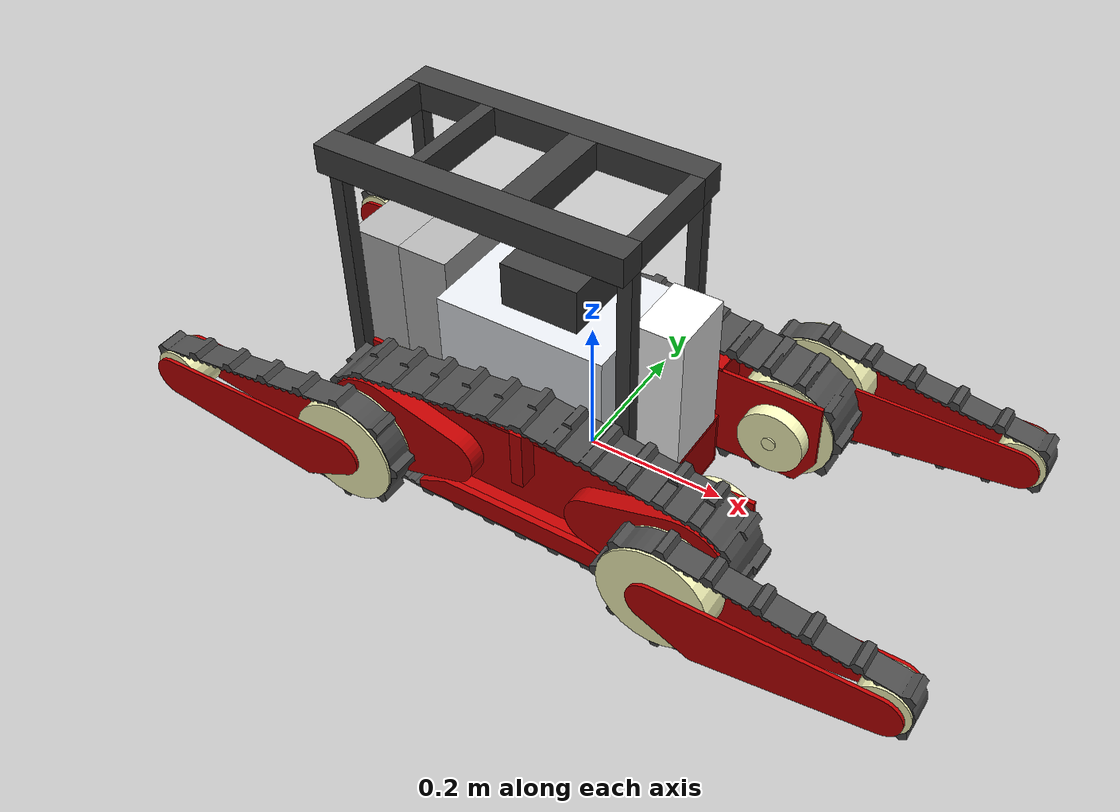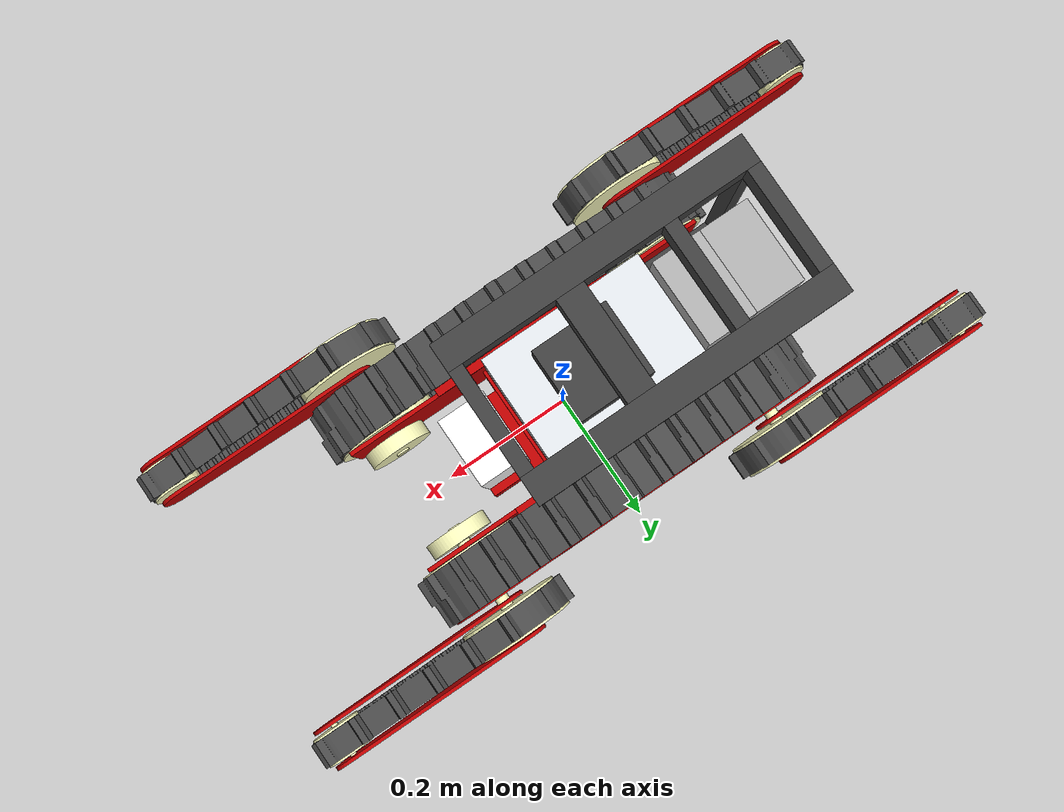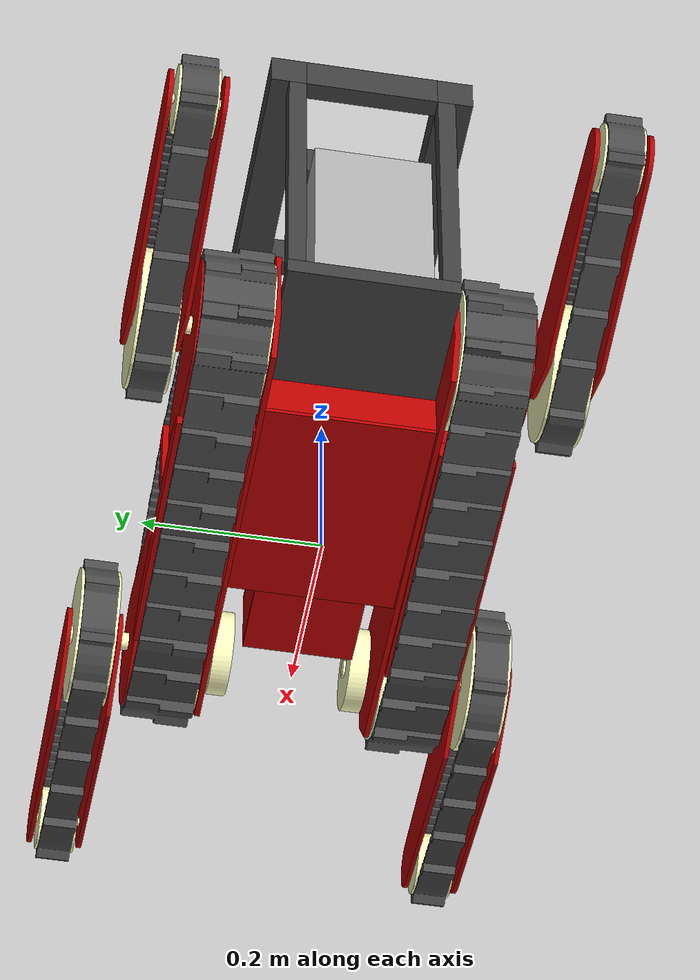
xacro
<?xml version="1.0"?>
<robot xmlns:xacro="http://ros.org/wiki/xacro" name="aizu_spider_basic">

  <xacro:include filename="$(find aizu_spider_tnk_description)/urdf/common.xacro"/>

  <link name="base_link"/>

  <!-- Chassis -->
  <xacro:include filename="$(find aizu_spider_tnk_description)/urdf/CHASSIS/CHASSIS.urdf.xacro"/>
  <!-- Flippers -->
  <xacro:include filename="$(find aizu_spider_tnk_description)/urdf/FLIPPER/FLIPPER.urdf.xacro"/>

</robot>

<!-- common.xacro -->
<robot xmlns:xacro="http://ros.org/wiki/xacro">

  <material name="off_white">
    <color rgba="1 1 0.752941 1"/>
  </material>

  <xacro:property name="M_PI" value="3.1415926535897931"/>

</robot>

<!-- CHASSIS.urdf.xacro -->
<robot xmlns:xacro="http://ros.org/wiki/xacro" name="aizu_spider_basic">
  <xacro:macro name="chassis_v0">
    <joint name="base_link_to_chassis" type="fixed">
      <parent link="base_link"/>
      <child link="chassis"/>
    </joint>
    <link name="chassis">
      <inertial>
        <mass value="47.91109" />
        <origin xyz="-0.08192 0 0.15046" rpy="0 -0 0" />
        <inertia ixx="1.15503784921" ixy="0.0" ixz="-0.21517604538"
                 iyy="2.13753698965" iyz="0.0" izz="1.94665822762" />
      </inertial>
      <visual>
        <origin xyz="0.0 0.0 0.0" rpy="0.0 -0.0 0.0" />
        <geometry>
          <mesh filename="package://aizu_spider_tnk_description/urdf/CHASSIS/-root-shape-0.dae" scale="1.0 1.0 1.0" />
        </geometry>
      </visual>
      <visual>
        <origin xyz="0.0 0.0 0.0" rpy="0.0 -0.0 0.0" />
        <geometry>
          <mesh filename="package://aizu_spider_tnk_description/urdf/CHASSIS/-root-shape-1.dae" scale="1.0 1.0 1.0" />
        </geometry>
      </visual>
      <visual>
        <origin xyz="0.0 0.0 0.0" rpy="0.0 -0.0 0.0" />
        <geometry>
          <mesh filename="package://aizu_spider_tnk_description/urdf/CHASSIS/-root-shape-2.dae" scale="1.0 1.0 1.0" />
        </geometry>
      </visual>
      <visual>
        <origin xyz="0.0 0.0 0.0" rpy="0.0 -0.0 0.0" />
        <geometry>
          <mesh filename="package://aizu_spider_tnk_description/urdf/CHASSIS/-root-shape-3.dae" scale="1.0 1.0 1.0" />
        </geometry>
      </visual>
      <visual>
        <origin xyz="0.0 0.0 0.0" rpy="0.0 -0.0 0.0" />
        <geometry>
          <mesh filename="package://aizu_spider_tnk_description/urdf/CHASSIS/-root-shape-4.dae" scale="1.0 1.0 1.0" />
        </geometry>
      </visual>
      <visual>
        <origin xyz="0.0 0.0 0.0" rpy="0.0 -0.0 0.0" />
        <geometry>
          <mesh filename="package://aizu_spider_tnk_description/urdf/CHASSIS/-root-shape-5.dae" scale="1.0 1.0 1.0" />
        </geometry>
      </visual>
      <visual>
        <origin xyz="0.0 0.0 0.0" rpy="0.0 -0.0 0.0" />
        <geometry>
          <mesh filename="package://aizu_spider_tnk_description/urdf/CHASSIS/-root-shape-6.dae" scale="1.0 1.0 1.0" />
        </geometry>
      </visual>
      <visual>
        <origin xyz="0.0 0.0 0.0" rpy="0.0 -0.0 0.0" />
        <geometry>
          <mesh filename="package://aizu_spider_tnk_description/urdf/CHASSIS/-root-shape-7.dae" scale="1.0 1.0 1.0" />
        </geometry>
      </visual>
      <visual>
        <origin xyz="0.0 0.0 0.0" rpy="0.0 -0.0 0.0" />
        <geometry>
          <mesh filename="package://aizu_spider_tnk_description/urdf/CHASSIS/-root-shape-8.dae" scale="1.0 1.0 1.0" />
        </geometry>
      </visual>
      <visual>
        <origin xyz="0.0 0.0 0.0" rpy="0.0 -0.0 0.0" />
        <geometry>
          <mesh filename="package://aizu_spider_tnk_description/urdf/CHASSIS/-root-shape-9.dae" scale="1.0 1.0 1.0" />
        </geometry>
      </visual>
      <visual>
        <origin xyz="0.0 0.0 0.0" rpy="0.0 -0.0 0.0" />
        <geometry>
          <mesh filename="package://aizu_spider_tnk_description/urdf/CHASSIS/-root-shape-10.dae" scale="1.0 1.0 1.0" />
        </geometry>
      </visual>
      <visual>
        <origin xyz="0.0 0.0 0.0" rpy="0.0 -0.0 0.0" />
        <geometry>
          <mesh filename="package://aizu_spider_tnk_description/urdf/CHASSIS/-root-shape-11.dae" scale="1.0 1.0 1.0" />
        </geometry>
      </visual>
      <visual>
        <origin xyz="0.0 0.0 0.0" rpy="0.0 -0.0 0.0" />
        <geometry>
          <mesh filename="package://aizu_spider_tnk_description/urdf/CHASSIS/-root-shape-12.dae" scale="1.0 1.0 1.0" />
        </geometry>
      </visual>
      <visual>
        <origin xyz="0.0 0.0 0.0" rpy="0.0 -0.0 0.0" />
        <geometry>
          <mesh filename="package://aizu_spider_tnk_description/urdf/CHASSIS/-root-shape-13.dae" scale="1.0 1.0 1.0" />
        </geometry>
      </visual>
      <visual>
        <origin xyz="0.0 0.0 0.0" rpy="0.0 -0.0 0.0" />
        <geometry>
          <mesh filename="package://aizu_spider_tnk_description/urdf/CHASSIS/-root-shape-14.dae" scale="1.0 1.0 1.0" />
        </geometry>
      </visual>
      <visual>
        <origin xyz="0.0 0.0 0.0" rpy="0.0 -0.0 0.0" />
        <geometry>
          <mesh filename="package://aizu_spider_tnk_description/urdf/CHASSIS/-root-shape-15.dae" scale="1.0 1.0 1.0" />
        </geometry>
      </visual>
      <visual>
        <origin xyz="0.0 0.0 0.0" rpy="0.0 -0.0 0.0" />
        <geometry>
          <mesh filename="package://aizu_spider_tnk_description/urdf/CHASSIS/-root-shape-16.dae" scale="1.0 1.0 1.0" />
        </geometry>
      </visual>
      <visual>
        <origin xyz="0.0 0.0 0.0" rpy="0.0 -0.0 0.0" />
        <geometry>
          <mesh filename="package://aizu_spider_tnk_description/urdf/CHASSIS/-root-shape-17.dae" scale="1.0 1.0 1.0" />
        </geometry>
      </visual>
      <visual>
        <origin xyz="0.0 0.0 0.0" rpy="0.0 -0.0 0.0" />
        <geometry>
          <mesh filename="package://aizu_spider_tnk_description/urdf/CHASSIS/-root-shape-18.dae" scale="1.0 1.0 1.0" />
        </geometry>
      </visual>
      <visual>
        <origin xyz="0.0 0.0 0.0" rpy="0.0 -0.0 0.0" />
        <geometry>
          <mesh filename="package://aizu_spider_tnk_description/urdf/CHASSIS/-root-shape-19.dae" scale="1.0 1.0 1.0" />
        </geometry>
      </visual>
      <visual>
        <origin xyz="0.0 0.0 0.0" rpy="0.0 -0.0 0.0" />
        <geometry>
          <mesh filename="package://aizu_spider_tnk_description/urdf/CHASSIS/-root-shape-20.dae" scale="1.0 1.0 1.0" />
        </geometry>
      </visual>
      <visual>
        <origin xyz="0.0 0.0 0.0" rpy="0.0 -0.0 0.0" />
        <geometry>
          <mesh filename="package://aizu_spider_tnk_description/urdf/CHASSIS/-root-shape-21.dae" scale="1.0 1.0 1.0" />
        </geometry>
      </visual>
      <visual>
        <origin xyz="0.0 0.0 0.0" rpy="0.0 -0.0 0.0" />
        <geometry>
          <mesh filename="package://aizu_spider_tnk_description/urdf/CHASSIS/-root-shape-22.dae" scale="1.0 1.0 1.0" />
        </geometry>
      </visual>
      <visual>
        <origin xyz="0.0 0.0 0.0" rpy="0.0 -0.0 0.0" />
        <geometry>
          <mesh filename="package://aizu_spider_tnk_description/urdf/CHASSIS/-root-shape-23.dae" scale="1.0 1.0 1.0" />
        </geometry>
      </visual>
      <visual>
        <origin xyz="0.0 0.0 0.0" rpy="0.0 -0.0 0.0" />
        <geometry>
          <mesh filename="package://aizu_spider_tnk_description/urdf/CHASSIS/-root-shape-24.dae" scale="1.0 1.0 1.0" />
        </geometry>
      </visual>
      <visual>
        <origin xyz="0.0 0.0 0.0" rpy="0.0 -0.0 0.0" />
        <geometry>
          <mesh filename="package://aizu_spider_tnk_description/urdf/CHASSIS/-root-shape-25.dae" scale="1.0 1.0 1.0" />
        </geometry>
      </visual>
      <visual>
        <origin xyz="0.0 0.0 0.0" rpy="0.0 -0.0 0.0" />
        <geometry>
          <mesh filename="package://aizu_spider_tnk_description/urdf/CHASSIS/-root-shape-26.dae" scale="1.0 1.0 1.0" />
        </geometry>
      </visual>
      <visual>
        <origin xyz="0.0 0.0 0.0" rpy="0.0 -0.0 0.0" />
        <geometry>
          <mesh filename="package://aizu_spider_tnk_description/urdf/CHASSIS/-root-shape-27.dae" scale="1.0 1.0 1.0" />
        </geometry>
      </visual>
      <visual>
        <origin xyz="0.0 0.0 0.0" rpy="0.0 -0.0 0.0" />
        <geometry>
          <mesh filename="package://aizu_spider_tnk_description/urdf/CHASSIS/-root-shape-28.dae" scale="1.0 1.0 1.0" />
        </geometry>
      </visual>
      <visual>
        <origin xyz="0.0 0.0 0.0" rpy="0.0 -0.0 0.0" />
        <geometry>
          <mesh filename="package://aizu_spider_tnk_description/urdf/CHASSIS/-root-shape-29.dae" scale="1.0 1.0 1.0" />
        </geometry>
      </visual>
      <visual>
        <origin xyz="0.0 0.0 0.0" rpy="0.0 -0.0 0.0" />
        <geometry>
          <mesh filename="package://aizu_spider_tnk_description/urdf/CHASSIS/-root-shape-30.dae" scale="1.0 1.0 1.0" />
        </geometry>
      </visual>
      <visual>
        <origin xyz="0.0 0.0 0.0" rpy="0.0 -0.0 0.0" />
        <geometry>
          <mesh filename="package://aizu_spider_tnk_description/urdf/CHASSIS/-root-shape-31.dae" scale="1.0 1.0 1.0" />
        </geometry>
      </visual>
      <visual>
        <origin xyz="0.0 0.0 0.0" rpy="0.0 -0.0 0.0" />
        <geometry>
          <mesh filename="package://aizu_spider_tnk_description/urdf/CHASSIS/-root-shape-32.dae" scale="1.0 1.0 1.0" />
        </geometry>
      </visual>
      <visual>
        <origin xyz="0.0 0.0 0.0" rpy="0.0 -0.0 0.0" />
        <geometry>
          <mesh filename="package://aizu_spider_tnk_description/urdf/CHASSIS/-root-shape-33.dae" scale="1.0 1.0 1.0" />
        </geometry>
      </visual>
      <visual>
        <origin xyz="0.0 0.0 0.0" rpy="0.0 -0.0 0.0" />
        <geometry>
          <mesh filename="package://aizu_spider_tnk_description/urdf/CHASSIS/-root-shape-34.dae" scale="1.0 1.0 1.0" />
        </geometry>
      </visual>
      <visual>
        <origin xyz="0.0 0.0 0.0" rpy="0.0 -0.0 0.0" />
        <geometry>
          <mesh filename="package://aizu_spider_tnk_description/urdf/CHASSIS/-root-shape-35.dae" scale="1.0 1.0 1.0" />
        </geometry>
      </visual>
      <visual>
        <origin xyz="0.0 0.0 0.0" rpy="0.0 -0.0 0.0" />
        <geometry>
          <mesh filename="package://aizu_spider_tnk_description/urdf/CHASSIS/-root-shape-36.dae" scale="1.0 1.0 1.0" />
        </geometry>
      </visual>
      <visual>
        <origin xyz="0.0 0.0 0.0" rpy="0.0 -0.0 0.0" />
        <geometry>
          <mesh filename="package://aizu_spider_tnk_description/urdf/CHASSIS/-root-shape-37.dae" scale="1.0 1.0 1.0" />
        </geometry>
      </visual>
      <visual>
        <origin xyz="0.0 0.0 0.0" rpy="0.0 -0.0 0.0" />
        <geometry>
          <mesh filename="package://aizu_spider_tnk_description/urdf/CHASSIS/-root-shape-38.dae" scale="1.0 1.0 1.0" />
        </geometry>
      </visual>
      <visual>
        <origin xyz="0.0 0.0 0.0" rpy="0.0 -0.0 0.0" />
        <geometry>
          <mesh filename="package://aizu_spider_tnk_description/urdf/CHASSIS/-root-shape-39.dae" scale="1.0 1.0 1.0" />
        </geometry>
      </visual>
      <visual>
        <origin xyz="0.0 0.0 0.0" rpy="0.0 -0.0 0.0" />
        <geometry>
          <mesh filename="package://aizu_spider_tnk_description/urdf/CHASSIS/-root-shape-40.dae" scale="1.0 1.0 1.0" />
        </geometry>
      </visual>
      <visual>
        <origin xyz="0.0 0.0 0.0" rpy="0.0 -0.0 0.0" />
        <geometry>
          <mesh filename="package://aizu_spider_tnk_description/urdf/CHASSIS/-root-shape-41.dae" scale="1.0 1.0 1.0" />
        </geometry>
      </visual>
      <visual>
        <origin xyz="0.0 0.0 0.0" rpy="0.0 -0.0 0.0" />
        <geometry>
          <mesh filename="package://aizu_spider_tnk_description/urdf/CHASSIS/-root-shape-42.dae" scale="1.0 1.0 1.0" />
        </geometry>
      </visual>
      <visual>
        <origin xyz="0.0 0.0 0.0" rpy="0.0 -0.0 0.0" />
        <geometry>
          <mesh filename="package://aizu_spider_tnk_description/urdf/CHASSIS/-root-shape-43.dae" scale="1.0 1.0 1.0" />
        </geometry>
      </visual>
      <visual>
        <origin xyz="0.0 0.0 0.0" rpy="0.0 -0.0 0.0" />
        <geometry>
          <mesh filename="package://aizu_spider_tnk_description/urdf/CHASSIS/-root-shape-44.dae" scale="1.0 1.0 1.0" />
        </geometry>
      </visual>
      <visual>
        <origin xyz="0.0 0.0 0.0" rpy="0.0 -0.0 0.0" />
        <geometry>
          <mesh filename="package://aizu_spider_tnk_description/urdf/CHASSIS/-root-shape-45.dae" scale="1.0 1.0 1.0" />
        </geometry>
      </visual>
      <visual>
        <origin xyz="0.0 0.0 0.0" rpy="0.0 -0.0 0.0" />
        <geometry>
          <mesh filename="package://aizu_spider_tnk_description/urdf/CHASSIS/-root-shape-46.dae" scale="1.0 1.0 1.0" />
        </geometry>
      </visual>
      <visual>
        <origin xyz="0.0 0.0 0.0" rpy="0.0 -0.0 0.0" />
        <geometry>
          <mesh filename="package://aizu_spider_tnk_description/urdf/CHASSIS/-root-shape-47.dae" scale="1.0 1.0 1.0" />
        </geometry>
      </visual>
      <visual>
        <origin xyz="0.0 0.0 0.0" rpy="0.0 -0.0 0.0" />
        <geometry>
          <mesh filename="package://aizu_spider_tnk_description/urdf/CHASSIS/-root-shape-48.dae" scale="1.0 1.0 1.0" />
        </geometry>
      </visual>
      <visual>
        <origin xyz="0.0 0.0 0.0" rpy="0.0 -0.0 0.0" />
        <geometry>
          <mesh filename="package://aizu_spider_tnk_description/urdf/CHASSIS/-root-shape-49.dae" scale="1.0 1.0 1.0" />
        </geometry>
      </visual>
      <visual>
        <origin xyz="0.0 0.0 0.0" rpy="0.0 -0.0 0.0" />
        <geometry>
          <mesh filename="package://aizu_spider_tnk_description/urdf/CHASSIS/-root-shape-50.dae" scale="1.0 1.0 1.0" />
        </geometry>
      </visual>
      <visual>
        <origin xyz="0.0 0.0 0.0" rpy="0.0 -0.0 0.0" />
        <geometry>
          <mesh filename="package://aizu_spider_tnk_description/urdf/CHASSIS/-root-shape-51.dae" scale="1.0 1.0 1.0" />
        </geometry>
      </visual>
      <visual>
        <origin xyz="0.0 0.0 0.0" rpy="0.0 -0.0 0.0" />
        <geometry>
          <mesh filename="package://aizu_spider_tnk_description/urdf/CHASSIS/-root-shape-52.dae" scale="1.0 1.0 1.0" />
        </geometry>
      </visual>
      <visual>
        <origin xyz="0.0 0.0 0.0" rpy="0.0 -0.0 0.0" />
        <geometry>
          <mesh filename="package://aizu_spider_tnk_description/urdf/CHASSIS/-root-shape-53.dae" scale="1.0 1.0 1.0" />
        </geometry>
      </visual>
      <visual>
        <origin xyz="0.0 0.0 0.0" rpy="0.0 -0.0 0.0" />
        <geometry>
          <mesh filename="package://aizu_spider_tnk_description/urdf/CHASSIS/-root-shape-54.dae" scale="1.0 1.0 1.0" />
        </geometry>
      </visual>
      <collision>
        <origin xyz="0.0 0.0 0.0" rpy="0.0 -0.0 0.0" />
        <geometry>
          <mesh filename="package://aizu_spider_tnk_description/urdf/CHASSIS/-root-shape-0.dae" scale="1.0 1.0 1.0" />
        </geometry>
      </collision>
      <collision>
        <origin xyz="0.0 0.0 0.0" rpy="0.0 -0.0 0.0" />
        <geometry>
          <mesh filename="package://aizu_spider_tnk_description/urdf/CHASSIS/-root-shape-1.dae" scale="1.0 1.0 1.0" />
        </geometry>
      </collision>
      <collision>
        <origin xyz="0.0 0.0 0.0" rpy="0.0 -0.0 0.0" />
        <geometry>
          <mesh filename="package://aizu_spider_tnk_description/urdf/CHASSIS/-root-shape-2.dae" scale="1.0 1.0 1.0" />
        </geometry>
      </collision>
      <collision>
        <origin xyz="0.0 0.0 0.0" rpy="0.0 -0.0 0.0" />
        <geometry>
          <mesh filename="package://aizu_spider_tnk_description/urdf/CHASSIS/-root-shape-3.dae" scale="1.0 1.0 1.0" />
        </geometry>
      </collision>
      <collision>
        <origin xyz="0.0 0.0 0.0" rpy="0.0 -0.0 0.0" />
        <geometry>
          <mesh filename="package://aizu_spider_tnk_description/urdf/CHASSIS/-root-shape-4.dae" scale="1.0 1.0 1.0" />
        </geometry>
      </collision>
      <collision>
        <origin xyz="0.0 0.0 0.0" rpy="0.0 -0.0 0.0" />
        <geometry>
          <mesh filename="package://aizu_spider_tnk_description/urdf/CHASSIS/-root-shape-5.dae" scale="1.0 1.0 1.0" />
        </geometry>
      </collision>
      <collision>
        <origin xyz="0.0 0.0 0.0" rpy="0.0 -0.0 0.0" />
        <geometry>
          <mesh filename="package://aizu_spider_tnk_description/urdf/CHASSIS/-root-shape-6.dae" scale="1.0 1.0 1.0" />
        </geometry>
      </collision>
      <collision>
        <origin xyz="0.0 0.0 0.0" rpy="0.0 -0.0 0.0" />
        <geometry>
          <mesh filename="package://aizu_spider_tnk_description/urdf/CHASSIS/-root-shape-7.dae" scale="1.0 1.0 1.0" />
        </geometry>
      </collision>
      <collision>
        <origin xyz="0.0 0.0 0.0" rpy="0.0 -0.0 0.0" />
        <geometry>
          <mesh filename="package://aizu_spider_tnk_description/urdf/CHASSIS/-root-shape-8.dae" scale="1.0 1.0 1.0" />
        </geometry>
      </collision>
      <collision>
        <origin xyz="0.0 0.0 0.0" rpy="0.0 -0.0 0.0" />
        <geometry>
          <mesh filename="package://aizu_spider_tnk_description/urdf/CHASSIS/-root-shape-9.dae" scale="1.0 1.0 1.0" />
        </geometry>
      </collision>
      <collision>
        <origin xyz="0.0 0.0 0.0" rpy="0.0 -0.0 0.0" />
        <geometry>
          <mesh filename="package://aizu_spider_tnk_description/urdf/CHASSIS/-root-shape-10.dae" scale="1.0 1.0 1.0" />
        </geometry>
      </collision>
      <collision>
        <origin xyz="0.0 0.0 0.0" rpy="0.0 -0.0 0.0" />
        <geometry>
          <mesh filename="package://aizu_spider_tnk_description/urdf/CHASSIS/-root-shape-11.dae" scale="1.0 1.0 1.0" />
        </geometry>
      </collision>
      <collision>
        <origin xyz="0.0 0.0 0.0" rpy="0.0 -0.0 0.0" />
        <geometry>
          <mesh filename="package://aizu_spider_tnk_description/urdf/CHASSIS/-root-shape-12.dae" scale="1.0 1.0 1.0" />
        </geometry>
      </collision>
      <collision>
        <origin xyz="0.0 0.0 0.0" rpy="0.0 -0.0 0.0" />
        <geometry>
          <mesh filename="package://aizu_spider_tnk_description/urdf/CHASSIS/-root-shape-13.dae" scale="1.0 1.0 1.0" />
        </geometry>
      </collision>
      <collision>
        <origin xyz="0.0 0.0 0.0" rpy="0.0 -0.0 0.0" />
        <geometry>
          <mesh filename="package://aizu_spider_tnk_description/urdf/CHASSIS/-root-shape-14.dae" scale="1.0 1.0 1.0" />
        </geometry>
      </collision>
      <collision>
        <origin xyz="0.0 0.0 0.0" rpy="0.0 -0.0 0.0" />
        <geometry>
          <mesh filename="package://aizu_spider_tnk_description/urdf/CHASSIS/-root-shape-15.dae" scale="1.0 1.0 1.0" />
        </geometry>
      </collision>
      <collision>
        <origin xyz="0.0 0.0 0.0" rpy="0.0 -0.0 0.0" />
        <geometry>
          <mesh filename="package://aizu_spider_tnk_description/urdf/CHASSIS/-root-shape-16.dae" scale="1.0 1.0 1.0" />
        </geometry>
      </collision>
      <collision>
        <origin xyz="0.0 0.0 0.0" rpy="0.0 -0.0 0.0" />
        <geometry>
          <mesh filename="package://aizu_spider_tnk_description/urdf/CHASSIS/-root-shape-17.dae" scale="1.0 1.0 1.0" />
        </geometry>
      </collision>
      <collision>
        <origin xyz="0.0 0.0 0.0" rpy="0.0 -0.0 0.0" />
        <geometry>
          <mesh filename="package://aizu_spider_tnk_description/urdf/CHASSIS/-root-shape-18.dae" scale="1.0 1.0 1.0" />
        </geometry>
      </collision>
      <collision>
        <origin xyz="0.0 0.0 0.0" rpy="0.0 -0.0 0.0" />
        <geometry>
          <mesh filename="package://aizu_spider_tnk_description/urdf/CHASSIS/-root-shape-19.dae" scale="1.0 1.0 1.0" />
        </geometry>
      </collision>
      <collision>
        <origin xyz="0.0 0.0 0.0" rpy="0.0 -0.0 0.0" />
        <geometry>
          <mesh filename="package://aizu_spider_tnk_description/urdf/CHASSIS/-root-shape-20.dae" scale="1.0 1.0 1.0" />
        </geometry>
      </collision>
      <collision>
        <origin xyz="0.0 0.0 0.0" rpy="0.0 -0.0 0.0" />
        <geometry>
          <mesh filename="package://aizu_spider_tnk_description/urdf/CHASSIS/-root-shape-21.dae" scale="1.0 1.0 1.0" />
        </geometry>
      </collision>
      <collision>
        <origin xyz="0.0 0.0 0.0" rpy="0.0 -0.0 0.0" />
        <geometry>
          <mesh filename="package://aizu_spider_tnk_description/urdf/CHASSIS/-root-shape-22.dae" scale="1.0 1.0 1.0" />
        </geometry>
      </collision>
      <collision>
        <origin xyz="0.0 0.0 0.0" rpy="0.0 -0.0 0.0" />
        <geometry>
          <mesh filename="package://aizu_spider_tnk_description/urdf/CHASSIS/-root-shape-23.dae" scale="1.0 1.0 1.0" />
        </geometry>
      </collision>
      <collision>
        <origin xyz="0.0 0.0 0.0" rpy="0.0 -0.0 0.0" />
        <geometry>
          <mesh filename="package://aizu_spider_tnk_description/urdf/CHASSIS/-root-shape-24.dae" scale="1.0 1.0 1.0" />
        </geometry>
      </collision>
      <collision>
        <origin xyz="0.0 0.0 0.0" rpy="0.0 -0.0 0.0" />
        <geometry>
          <mesh filename="package://aizu_spider_tnk_description/urdf/CHASSIS/-root-shape-25.dae" scale="1.0 1.0 1.0" />
        </geometry>
      </collision>
      <collision>
        <origin xyz="0.0 0.0 0.0" rpy="0.0 -0.0 0.0" />
        <geometry>
          <mesh filename="package://aizu_spider_tnk_description/urdf/CHASSIS/-root-shape-26.dae" scale="1.0 1.0 1.0" />
        </geometry>
      </collision>
      <collision>
        <origin xyz="0.0 0.0 0.0" rpy="0.0 -0.0 0.0" />
        <geometry>
          <mesh filename="package://aizu_spider_tnk_description/urdf/CHASSIS/-root-shape-27.dae" scale="1.0 1.0 1.0" />
        </geometry>
      </collision>
      <collision>
        <origin xyz="0.0 0.0 0.0" rpy="0.0 -0.0 0.0" />
        <geometry>
          <mesh filename="package://aizu_spider_tnk_description/urdf/CHASSIS/-root-shape-28.dae" scale="1.0 1.0 1.0" />
        </geometry>
      </collision>
      <collision>
        <origin xyz="0.0 0.0 0.0" rpy="0.0 -0.0 0.0" />
        <geometry>
          <mesh filename="package://aizu_spider_tnk_description/urdf/CHASSIS/-root-shape-29.dae" scale="1.0 1.0 1.0" />
        </geometry>
      </collision>
      <collision>
        <origin xyz="0.0 0.0 0.0" rpy="0.0 -0.0 0.0" />
        <geometry>
          <mesh filename="package://aizu_spider_tnk_description/urdf/CHASSIS/-root-shape-30.dae" scale="1.0 1.0 1.0" />
        </geometry>
      </collision>
      <collision>
        <origin xyz="0.0 0.0 0.0" rpy="0.0 -0.0 0.0" />
        <geometry>
          <mesh filename="package://aizu_spider_tnk_description/urdf/CHASSIS/-root-shape-31.dae" scale="1.0 1.0 1.0" />
        </geometry>
      </collision>
      <collision>
        <origin xyz="0.0 0.0 0.0" rpy="0.0 -0.0 0.0" />
        <geometry>
          <mesh filename="package://aizu_spider_tnk_description/urdf/CHASSIS/-root-shape-32.dae" scale="1.0 1.0 1.0" />
        </geometry>
      </collision>
      <collision>
        <origin xyz="0.0 0.0 0.0" rpy="0.0 -0.0 0.0" />
        <geometry>
          <mesh filename="package://aizu_spider_tnk_description/urdf/CHASSIS/-root-shape-33.dae" scale="1.0 1.0 1.0" />
        </geometry>
      </collision>
      <collision>
        <origin xyz="0.0 0.0 0.0" rpy="0.0 -0.0 0.0" />
        <geometry>
          <mesh filename="package://aizu_spider_tnk_description/urdf/CHASSIS/-root-shape-34.dae" scale="1.0 1.0 1.0" />
        </geometry>
      </collision>
      <collision>
        <origin xyz="0.0 0.0 0.0" rpy="0.0 -0.0 0.0" />
        <geometry>
          <mesh filename="package://aizu_spider_tnk_description/urdf/CHASSIS/-root-shape-35.dae" scale="1.0 1.0 1.0" />
        </geometry>
      </collision>
      <collision>
        <origin xyz="0.0 0.0 0.0" rpy="0.0 -0.0 0.0" />
        <geometry>
          <mesh filename="package://aizu_spider_tnk_description/urdf/CHASSIS/-root-shape-36.dae" scale="1.0 1.0 1.0" />
        </geometry>
      </collision>
      <collision>
        <origin xyz="0.0 0.0 0.0" rpy="0.0 -0.0 0.0" />
        <geometry>
          <mesh filename="package://aizu_spider_tnk_description/urdf/CHASSIS/-root-shape-37.dae" scale="1.0 1.0 1.0" />
        </geometry>
      </collision>
      <collision>
        <origin xyz="0.0 0.0 0.0" rpy="0.0 -0.0 0.0" />
        <geometry>
          <mesh filename="package://aizu_spider_tnk_description/urdf/CHASSIS/-root-shape-38.dae" scale="1.0 1.0 1.0" />
        </geometry>
      </collision>
      <collision>
        <origin xyz="0.0 0.0 0.0" rpy="0.0 -0.0 0.0" />
        <geometry>
          <mesh filename="package://aizu_spider_tnk_description/urdf/CHASSIS/-root-shape-39.dae" scale="1.0 1.0 1.0" />
        </geometry>
      </collision>
      <collision>
        <origin xyz="0.0 0.0 0.0" rpy="0.0 -0.0 0.0" />
        <geometry>
          <mesh filename="package://aizu_spider_tnk_description/urdf/CHASSIS/-root-shape-40.dae" scale="1.0 1.0 1.0" />
        </geometry>
      </collision>
      <collision>
        <origin xyz="0.0 0.0 0.0" rpy="0.0 -0.0 0.0" />
        <geometry>
          <mesh filename="package://aizu_spider_tnk_description/urdf/CHASSIS/-root-shape-41.dae" scale="1.0 1.0 1.0" />
        </geometry>
      </collision>
      <collision>
        <origin xyz="0.0 0.0 0.0" rpy="0.0 -0.0 0.0" />
        <geometry>
          <mesh filename="package://aizu_spider_tnk_description/urdf/CHASSIS/-root-shape-42.dae" scale="1.0 1.0 1.0" />
        </geometry>
      </collision>
      <collision>
        <origin xyz="0.0 0.0 0.0" rpy="0.0 -0.0 0.0" />
        <geometry>
          <mesh filename="package://aizu_spider_tnk_description/urdf/CHASSIS/-root-shape-43.dae" scale="1.0 1.0 1.0" />
        </geometry>
      </collision>
      <collision>
        <origin xyz="0.0 0.0 0.0" rpy="0.0 -0.0 0.0" />
        <geometry>
          <mesh filename="package://aizu_spider_tnk_description/urdf/CHASSIS/-root-shape-44.dae" scale="1.0 1.0 1.0" />
        </geometry>
      </collision>
      <collision>
        <origin xyz="0.0 0.0 0.0" rpy="0.0 -0.0 0.0" />
        <geometry>
          <mesh filename="package://aizu_spider_tnk_description/urdf/CHASSIS/-root-shape-45.dae" scale="1.0 1.0 1.0" />
        </geometry>
      </collision>
      <collision>
        <origin xyz="0.0 0.0 0.0" rpy="0.0 -0.0 0.0" />
        <geometry>
          <mesh filename="package://aizu_spider_tnk_description/urdf/CHASSIS/-root-shape-46.dae" scale="1.0 1.0 1.0" />
        </geometry>
      </collision>
      <collision>
        <origin xyz="0.0 0.0 0.0" rpy="0.0 -0.0 0.0" />
        <geometry>
          <mesh filename="package://aizu_spider_tnk_description/urdf/CHASSIS/-root-shape-47.dae" scale="1.0 1.0 1.0" />
        </geometry>
      </collision>
      <collision>
        <origin xyz="0.0 0.0 0.0" rpy="0.0 -0.0 0.0" />
        <geometry>
          <mesh filename="package://aizu_spider_tnk_description/urdf/CHASSIS/-root-shape-48.dae" scale="1.0 1.0 1.0" />
        </geometry>
      </collision>
      <collision>
        <origin xyz="0.0 0.0 0.0" rpy="0.0 -0.0 0.0" />
        <geometry>
          <mesh filename="package://aizu_spider_tnk_description/urdf/CHASSIS/-root-shape-49.dae" scale="1.0 1.0 1.0" />
        </geometry>
      </collision>
      <collision>
        <origin xyz="0.0 0.0 0.0" rpy="0.0 -0.0 0.0" />
        <geometry>
          <mesh filename="package://aizu_spider_tnk_description/urdf/CHASSIS/-root-shape-50.dae" scale="1.0 1.0 1.0" />
        </geometry>
      </collision>
      <collision>
        <origin xyz="0.0 0.0 0.0" rpy="0.0 -0.0 0.0" />
        <geometry>
          <mesh filename="package://aizu_spider_tnk_description/urdf/CHASSIS/-root-shape-51.dae" scale="1.0 1.0 1.0" />
        </geometry>
      </collision>
      <collision>
        <origin xyz="0.0 0.0 0.0" rpy="0.0 -0.0 0.0" />
        <geometry>
          <mesh filename="package://aizu_spider_tnk_description/urdf/CHASSIS/-root-shape-52.dae" scale="1.0 1.0 1.0" />
        </geometry>
      </collision>
      <collision>
        <origin xyz="0.0 0.0 0.0" rpy="0.0 -0.0 0.0" />
        <geometry>
          <mesh filename="package://aizu_spider_tnk_description/urdf/CHASSIS/-root-shape-53.dae" scale="1.0 1.0 1.0" />
        </geometry>
      </collision>
      <collision>
        <origin xyz="0.0 0.0 0.0" rpy="0.0 -0.0 0.0" />
        <geometry>
          <mesh filename="package://aizu_spider_tnk_description/urdf/CHASSIS/-root-shape-54.dae" scale="1.0 1.0 1.0" />
        </geometry>
      </collision>
    </link>
  </xacro:macro>

  <!-- Chassis -->
  <xacro:chassis_v0/>
  <!-- Main Belts -->
  <xacro:include filename="$(find aizu_spider_tnk_description)/urdf/MAIN_BELT/MAIN_BELT.urdf.xacro"/>
  <xacro:main_belt_v0 prefix="right">
    <origin xyz="0 -0.14150 0.062" rpy="0 0 ${M_PI}"/>
  </xacro:main_belt_v0>
  <xacro:main_belt_v0 prefix="left">
    <origin xyz="0 0.14150 0.062" rpy="0 0 0"/>
  </xacro:main_belt_v0>
  <!-- Wheels -->
  <xacro:include filename="$(find aizu_spider_tnk_description)/urdf/WHEELS/WHEELS.urdf.xacro"/>
  <xacro:track_wheel_v0 parent="chassis" prefix="FR">
    <origin xyz="0.234 -0.146 0.062" rpy="0 0 0"/>
  </xacro:track_wheel_v0>
  <xacro:track_wheel_v0 parent="chassis" prefix="BR">
    <origin xyz="-0.234 -0.146 0.062" rpy="0 0 0"/>
  </xacro:track_wheel_v0>
  <xacro:track_wheel_v0 parent="chassis" prefix="FL" reflect="-1">
    <origin xyz="0.234 0.146 0.062" rpy="0 0 0"/>
  </xacro:track_wheel_v0>
  <xacro:track_wheel_v0 parent="chassis" prefix="BL" reflect="-1">
    <origin xyz="-0.234 0.146 0.062" rpy="0 0 0"/>
  </xacro:track_wheel_v0>

</robot>

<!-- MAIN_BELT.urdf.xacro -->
<robot xmlns:xacro="http://ros.org/wiki/xacro" name="aizu_spider_basic">
  <xacro:macro name="main_belt_v0" params="prefix *origin">
    <joint name="chassis_to_${prefix}_main_belt" type="fixed">
      <parent link="chassis"/>
      <child link="${prefix}_main_belt"/>
      <insert_block name="origin"/>
    </joint>
    <link name="${prefix}_main_belt">
      <inertial>
        <mass value="0.0" />
        <origin xyz="0.0 0.0 0.0" rpy="0 -0 0" />
        <inertia ixx="0.0" ixy="0.0" ixz="0.0" iyy="0.0" iyz="0.0" izz="0.0" />
      </inertial>
      <visual>
        <origin xyz="0.0 0.0 0.0" rpy="0.0 -0.0 0.0" />
        <geometry>
          <mesh filename="package://aizu_spider_tnk_description/urdf/MAIN_BELT/-root-shape-0.dae" scale="1.0 1.0 1.0" />
        </geometry>
      </visual>
      <collision>
        <origin xyz="0.0 0.0 0.0" rpy="0.0 -0.0 0.0" />
        <geometry>
          <mesh filename="package://aizu_spider_tnk_description/urdf/MAIN_BELT/-root-shape-0.dae" scale="1.0 1.0 1.0" />
        </geometry>
      </collision>
    </link>
  </xacro:macro>
</robot>

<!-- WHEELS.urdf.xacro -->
<robot xmlns:xacro="http://ros.org/wiki/xacro" name="aizu_spider_basic">

  <xacro:macro name="track_wheel_v0" params="parent prefix reflect:=1 *origin">
    <joint name="${parent}_to_${prefix}_track_wheel" type="continuous">
      <parent link="${parent}"/>
      <child link="${prefix}_track_wheel"/>
      <xacro:insert_block name="origin"/>
      <axis xyz="0 1 0"/>
    </joint>
    <link name="${prefix}_track_wheel">
      <inertial>
        <mass value="0.08293"/>
        <inertia ixx="0.00003407162" ixy="0" ixz="0"
                 iyy="0.00000609616" iyz="0" izz="0.00003407162"/>
      </inertial>
      <visual>
        <origin xyz="0 ${reflect*0.045/2} 0" rpy="${M_PI/2} 0 0"/>
        <geometry>
          <cylinder radius="0.07681" length="0.045"/>
        </geometry>
        <material name="off_white"/>
      </visual>
      <collision>
        <origin xyz="0 ${reflect*0.045/2} 0" rpy="${M_PI/2} 0 0"/>
        <geometry>
          <cylinder radius="0.07681" length="0.045"/>
        </geometry>
        <material name="off_white"/>
      </collision>
    </link>
  </xacro:macro>

   <xacro:macro name="sub_track_wheel1_v0" params="parent prefix reflect:=1">
    <joint name="${parent}_to_${prefix}_sub_track_wheel1" type="continuous">
      <parent link="${parent}"/>
      <child link="${prefix}_sub_track_wheel1"/>
      <axis xyz="0 1 0"/>
    </joint>
    <link name="${prefix}_sub_track_wheel1">
      <inertial>
        <mass value="2.23528"/>
        <inertia ixx="0.00367412297" ixy="0" ixz="0"
                 iyy="0.00659383758" iyz="0" izz="0.00367412297"/>
      </inertial>
      <visual>
        <origin xyz="0 ${reflect*0.045/2} 0" rpy="${M_PI/2} 0 0"/>
        <geometry>
          <cylinder radius="0.07681" length="0.045"/>
        </geometry>
        <material name="off_white"/>
      </visual>
      <collision>
        <origin xyz="0 ${reflect*0.045/2} 0" rpy="${M_PI/2} 0 0"/>
        <geometry>
          <cylinder radius="0.07681" length="0.045"/>
        </geometry>
        <material name="off_white"/>
      </collision>
    </link>
  </xacro:macro>

   <xacro:macro name="sub_track_wheel2_v0" params="parent prefix reflect:=1 *origin">
    <joint name="${parent}_to_${prefix}_sub_track_wheel2" type="continuous">
      <parent link="${parent}"/>
      <child link="${prefix}_sub_track_wheel2"/>
      <xacro:insert_block name="origin"/>
      <axis xyz="0 1 0"/>
    </joint>
    <link name="${prefix}_sub_track_wheel2">
      <inertial>
        <mass value="0.49044"/>
        <inertia ixx="0.0024144170" ixy="0" ixz="0"
                 iyy="0.00032463614" iyz="0" izz="0.00024144170"/>
      </inertial>
      <visual>
        <origin xyz="0 ${reflect*0.044/2} 0" rpy="${M_PI/2} 0 0"/>
        <geometry>
          <cylinder radius="0.036385" length="0.044"/>
        </geometry>
        <material name="off_white"/>
      </visual>
      <collision>
        <origin xyz="0 ${reflect*0.045/2} 0" rpy="${M_PI/2} 0 0"/>
        <geometry>
          <cylinder radius="0.07681" length="0.045"/>
        </geometry>
        <material name="off_white"/>
      </collision>
    </link>
  </xacro:macro>
</robot>

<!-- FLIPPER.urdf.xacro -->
<robot xmlns:xacro="http://ros.org/wiki/xacro" name="aizu_spider_basic">
  <!-- Sub Belts -->
  <xacro:include filename="$(find aizu_spider_tnk_description)/urdf/SUB_BELT/SUB_BELT.urdf.xacro"/>
  <!-- Wheels -->
  <xacro:include filename="$(find aizu_spider_tnk_description)/urdf/WHEELS/WHEELS.urdf.xacro"/>

  <xacro:macro name="flipper_v0" params="prefix reflect *origin">
    <joint name="chassis_to_${prefix}_flipper" type="continuous">
      <parent link="chassis"/>
      <child link="${prefix}_flipper"/>
      <insert_block name="origin"/>
      <axis xyz="0 ${reflect} 0"/>
    </joint>
    <link name="${prefix}_flipper">
      <inertial>
        <mass value="0.71405" />
        <origin xyz="0 0.00756 0.14824" rpy="0 -0 0" />
        <inertia ixx="0.00710373242" ixy="0.0" ixz="0.0"
                 iyy="0.00733928172" iyz="-0.00019168924" izz="0.00092891251" />
      </inertial>
      <visual>
        <origin xyz="0.0 0.0 0.0" rpy="0.0 -0.0 0.0" />
        <geometry>
          <mesh filename="package://aizu_spider_tnk_description/urdf/FLIPPER/-root-shape-0.dae" scale="1.0 1.0 1.0" />
        </geometry>
      </visual>
      <visual>
        <origin xyz="0.0 0.0 0.0" rpy="0.0 -0.0 0.0" />
        <geometry>
          <mesh filename="package://aizu_spider_tnk_description/urdf/FLIPPER/-root-shape-1.dae" scale="1.0 1.0 1.0" />
        </geometry>
      </visual>
      <visual>
        <origin xyz="0.0 0.0 0.0" rpy="0.0 -0.0 0.0" />
        <geometry>
          <mesh filename="package://aizu_spider_tnk_description/urdf/FLIPPER/-root-shape-2.dae" scale="1.0 1.0 1.0" />
        </geometry>
      </visual>
      <collision>
        <origin xyz="0.0 0.0 0.0" rpy="0.0 -0.0 0.0" />
        <geometry>
          <mesh filename="package://aizu_spider_tnk_description/urdf/FLIPPER/-root-shape-0.dae" scale="1.0 1.0 1.0" />
        </geometry>
      </collision>
      <collision>
        <origin xyz="0.0 0.0 0.0" rpy="0.0 -0.0 0.0" />
        <geometry>
          <mesh filename="package://aizu_spider_tnk_description/urdf/FLIPPER/-root-shape-1.dae" scale="1.0 1.0 1.0" />
        </geometry>
      </collision>
      <collision>
        <origin xyz="0.0 0.0 0.0" rpy="0.0 -0.0 0.0" />
        <geometry>
          <mesh filename="package://aizu_spider_tnk_description/urdf/FLIPPER/-root-shape-2.dae" scale="1.0 1.0 1.0" />
        </geometry>
      </collision>
    </link>

    <xacro:sub_belt_v0 prefix="${prefix}"/>

    <xacro:sub_track_wheel1_v0 parent="${prefix}_flipper" prefix="${prefix}" reflect="0">
    </xacro:sub_track_wheel1_v0>

    <xacro:sub_track_wheel2_v0 parent="${prefix}_flipper" prefix="${prefix}" reflect="0">
      <origin xyz="0.29450 0 0"/>
    </xacro:sub_track_wheel2_v0>

  </xacro:macro>

  <!-- Flippers -->
  <xacro:flipper_v0 prefix="FR" reflect="-1">
    <origin xyz="0.234 -0.22350 0.062"/>
  </xacro:flipper_v0>
  <xacro:flipper_v0 prefix="FL" reflect="-1">
    <origin xyz="0.234 0.22350 0.062"/>
  </xacro:flipper_v0>
  <xacro:flipper_v0 prefix="BR" reflect="1">
    <origin xyz="-0.234 -0.22350 0.062" rpy="0 0 ${M_PI}"/>
  </xacro:flipper_v0>
  <xacro:flipper_v0 prefix="BL" reflect="1">
    <origin xyz="-0.234 0.22350 0.062" rpy="0 0 ${M_PI}"/>
  </xacro:flipper_v0>

</robot>

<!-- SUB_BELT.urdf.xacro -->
<robot xmlns:xacro="http://ros.org/wiki/xacro" name="aizu_spider_basic">
  <xacro:macro name="sub_belt_v0" params="prefix">
    <joint name="${prefix}_flipper_to_${prefix}_sub_belt" type="fixed">
      <parent link="${prefix}_flipper"/>
      <child link="${prefix}_sub_belt"/>
    </joint>
    <link name="${prefix}_sub_belt">
      <inertial>
        <mass value="0.0" />
        <origin xyz="0.0 0.0 0.0" rpy="0 -0 0" />
        <inertia ixx="0.0" ixy="0.0" ixz="0.0" iyy="0.0" iyz="0.0" izz="0.0" />
      </inertial>
      <visual>
        <origin xyz="0.0 0.0 0.0" rpy="0.0 -0.0 0.0" />
        <geometry>
          <mesh filename="package://aizu_spider_tnk_description/urdf/SUB_BELT/-root-shape-0.dae" scale="1.0 1.0 1.0" />
        </geometry>
      </visual>
      <collision>
        <origin xyz="0.0 0.0 0.0" rpy="0.0 -0.0 0.0" />
        <geometry>
          <mesh filename="package://aizu_spider_tnk_description/urdf/SUB_BELT/-root-shape-0.dae" scale="1.0 1.0 1.0" />
        </geometry>
      </collision>
    </link>
  </xacro:macro>
</robot>
